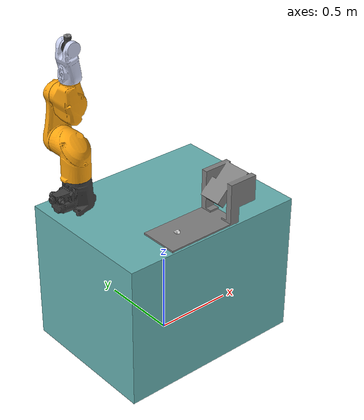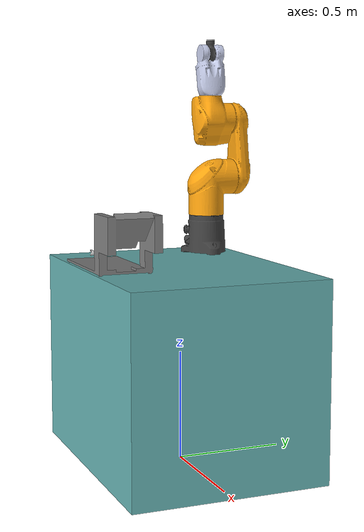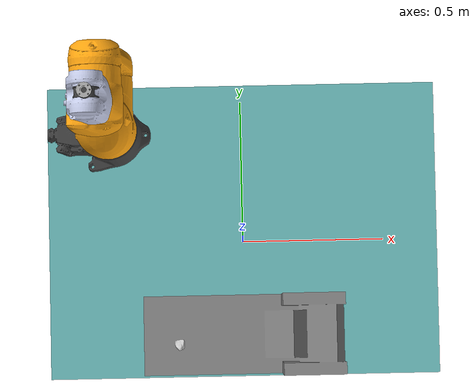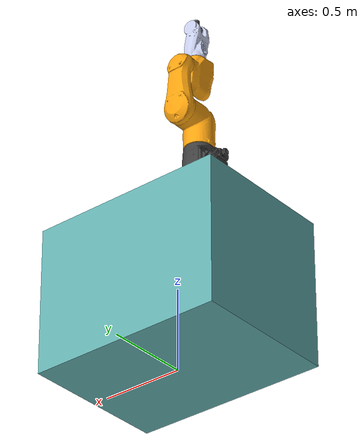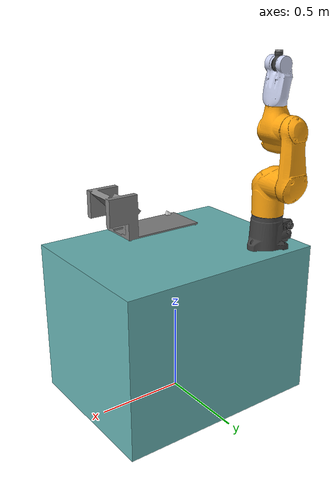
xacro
<?xml version="1.0" ?>
<robot name="room" xmlns:xacro="http://ros.org/wiki/xacro">

    <!-- ARGs -->
    <xacro:arg name="isShowCrown" default="true" />
    <xacro:arg name="isShowHDI" default="true" />

    <!-- PROPERTY -->
    <xacro:property name="robot1_prefix" value="robot1_"/>

    <!-- INCLUDES -->
    <xacro:include filename="$(find staubli_support)/urdf/robot/staubli_robot.xacro"/>
    <xacro:include filename="$(find staubli_support)/urdf/workcell/workcell.xacro"/>

    <!-- WORLD -->
    <link name="world" />

    <!-- ======== Components ========= -->

    <!-- ROBOT INIT -->
    <xacro:staubli_robot prefix="${robot1_prefix}"/>
    <xacro:workcell isShowCrown="$(arg isShowCrown)" isShowHDI="$(arg isShowHDI)"/>

    <!-- Connect Table -->
    <joint name="world_table_joint" type="fixed">
      <origin
        xyz="0 0 0.9"
        rpy="0 0 0" />
      <parent
        link="world" />
      <child
        link="table" />
    </joint>

    <!-- Connect Robot 1 -->
    <joint name="table_${robot1_prefix}base_link_joint" type="fixed">
      <origin
        xyz="-0.4 0.3 0"
        rpy="0 0 0" />
      <parent
        link="table" />
      <child
        link="${robot1_prefix}base_link" />
    </joint>

</robot>

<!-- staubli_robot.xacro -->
<robot name="staubli_support" xmlns:xacro="http://ros.org/wiki/xacro">

<xacro:macro name="default_material">
    <material name="">
      <color rgba="0.7 0.7 0.7 1.0"/>
    </material>
</xacro:macro>

<xacro:macro name="white_material">
    <material name="">
      <color rgba="1.0 1.0 1.0 1.0"/>
    </material>
</xacro:macro>

<xacro:macro name="box_inertial" params="m x y z rpy">
  <inertial>
    <origin xyz="0 ${y/2} 0" rpy="${rpy}" />
    <mass value="${m}"/>
    <inertia ixx="${1/12 * m * (y**2 + z**2)}" iyy="${1/12 * m * (x**2 + z**2)}" izz="${1/12 * m * (x**2 + y**2)}" ixy="0" ixz="0" iyz="0"/>
  </inertial>
</xacro:macro>

<xacro:macro name="staubli_robot" params="prefix">
  <link name="${prefix}base_link">
    <inertial>
      <origin
        xyz="-0.036094 -0.0011916 0.08178"
        rpy="0 0 0" />
      <mass
        value="7.5748" />
      <inertia
        ixx="0.029538"
        ixy="-8.9612E-05"
        ixz="0.00038729"
        iyy="0.027722"
        iyz="9.1466E-06"
        izz="0.022274" />
    </inertial>
    <visual>
      <origin
        xyz="0 0 0"
        rpy="0 0 0" />
      <geometry>
        <mesh
          filename="package://staubli_support/meshes/robot/base_link.STL" />
      </geometry>
      <material
        name="">
        <color
          rgba="0.25098 0.25098 0.25098 1" />
      </material>
    </visual>
    <collision>
      <origin
        xyz="0 0 0"
        rpy="0 0 0" />
      <geometry>
        <mesh
          filename="package://staubli_support/meshes/robot/base_link.STL" />
      </geometry>
    </collision>
  </link>
  <link name="${prefix}link1">
    <inertial>
      <origin
        xyz="-0.00023609 0.023183 0.32254"
        rpy="0 0 0" />
      <mass
        value="7.2296" />
      <inertia
        ixx="0.059563"
        ixy="-3.8764E-05"
        ixz="-0.00017842"
        iyy="0.050679"
        iyz="-0.010038"
        izz="0.03708" />
    </inertial>
    <visual>
      <origin
        xyz="0 0 0"
        rpy="0 0 0" />
      <geometry>
        <mesh
          filename="package://staubli_support/meshes/robot/link1.STL" />
      </geometry>
      <material
        name="">
        <color
          rgba="1 0.64706 0.058824 1" />
      </material>
    </visual>
    <collision>
      <origin
        xyz="0 0 0"
        rpy="0 0 0" />
      <geometry>
        <mesh
          filename="package://staubli_support/meshes/robot/link1.STL" />
      </geometry>
    </collision>
  </link>
  <joint name="${prefix}joint1" type="revolute">
    <origin
      xyz="0 0 0"
      rpy="0 0 0" />
    <parent
      link="${prefix}base_link" />
    <child
      link="${prefix}link1" />
    <axis
      xyz="0 0 1" />
    <limit
      lower="-3.141"
      upper="3.141"
      effort="1"
      velocity="1" />
  </joint>
  <link name="${prefix}link2">
    <inertial>
      <origin
        xyz="0.0017645 -0.12741 0.16923"
        rpy="0 0 0" />
      <mass
        value="4.1314" />
      <inertia
        ixx="0.063291"
        ixy="0.00024372"
        ixz="2.1522E-05"
        iyy="0.0084987"
        iyz="-0.0015532"
        izz="0.068276" />
    </inertial>
    <visual>
      <origin
        xyz="0 0 0"
        rpy="0 0 0" />
      <geometry>
        <mesh
          filename="package://staubli_support/meshes/robot/link2.STL" />
      </geometry>
      <material
        name="">
        <color
          rgba="1 0.64706 0.058824 1" />
      </material>
    </visual>
    <collision>
      <origin
        xyz="0 0 0"
        rpy="0 0 0" />
      <geometry>
        <mesh
          filename="package://staubli_support/meshes/robot/link2.STL" />
      </geometry>
    </collision>
  </link>
  <joint name="${prefix}joint2" type="revolute">
    <origin
      xyz="0 0 0.375"
      rpy="-1.5708 0 0" />
    <parent
      link="${prefix}link1" />
    <child
      link="${prefix}link2" />
    <axis
      xyz="0 0 1" />
    <limit
      lower="-2.225"
      upper="2.225"
      effort="1"
      velocity="1" />
  </joint>
  <link name="${prefix}link3">
    <inertial>
      <origin
        xyz="-0.0038838 0.0079486 0.019209"
        rpy="0 0 0" />
      <mass
        value="4.7835" />
      <inertia
        ixx="0.029621"
        ixy="0.00014958"
        ixz="-0.00068514"
        iyy="0.01953"
        iyz="-0.00061217"
        izz="0.022392" />
    </inertial>
    <visual>
      <origin
        xyz="0 0 0"
        rpy="0 0 0" />
      <geometry>
        <mesh
          filename="package://staubli_support/meshes/robot/link3.STL" />
      </geometry>
      <material
        name="">
        <color
          rgba="1 0.64706 0.058824 1" />
      </material>
    </visual>
    <collision>
      <origin
        xyz="0 0 0"
        rpy="0 0 0" />
      <geometry>
        <mesh
          filename="package://staubli_support/meshes/robot/link3.STL" />
      </geometry>
    </collision>
  </link>
  <joint name="${prefix}joint3" type="revolute">
    <origin
      xyz="0 -0.29 0.02"
      rpy="0 0 0" />
    <parent
      link="${prefix}link2" />
    <child
      link="${prefix}link3" />
    <axis
      xyz="0 0 1" />
    <limit
      lower="-2.487"
      upper="2.487"
      effort="1"
      velocity="1" />
  </joint>
  <link name="${prefix}link4">
    <inertial>
      <origin
        xyz="-0.0028815 6.4563E-07 0.21427"
        rpy="0 0 0" />
      <mass
        value="2.2867" />
      <inertia
        ixx="0.0056823"
        ixy="2.4543E-08"
        ixz="-0.00022643"
        iyy="0.004438"
        iyz="-7.2146E-07"
        izz="0.0043223" />
    </inertial>
    <visual>
      <origin
        xyz="0 0 0"
        rpy="0 0 0" />
      <geometry>
        <mesh
          filename="package://staubli_support/meshes/robot/link4.STL" />
      </geometry>
      <material
        name="">
        <color
          rgba="0.79216 0.81961 0.93333 1" />
      </material>
    </visual>
    <collision>
      <origin
        xyz="0 0 0"
        rpy="0 0 0" />
      <geometry>
        <mesh
          filename="package://staubli_support/meshes/robot/link4.STL" />
      </geometry>
    </collision>
  </link>
  <joint name="${prefix}joint4" type="revolute">
    <origin
      xyz="0 0 0"
      rpy="1.5708 0 0" />
    <parent
      link="${prefix}link3" />
    <child
      link="${prefix}link4" />
    <axis
      xyz="0 0 1" />
    <limit
      lower="-4.712"
      upper="4.712"
      effort="1"
      velocity="1" />
  </joint>
  <link name="${prefix}link5">
    <inertial>
      <origin
        xyz="0.00019051 -0.015249 8.859E-07"
        rpy="0 0 0" />
      <mass
        value="0.11472" />
      <inertia
        ixx="8.4067E-05"
        ixy="-3.5681E-07"
        ixz="2.7456E-11"
        iyy="2.9426E-05"
        iyz="4.0677E-09"
        izz="9.5322E-05" />
    </inertial>
    <visual>
      <origin
        xyz="0 0 0"
        rpy="0 0 0" />
      <geometry>
        <mesh
          filename="package://staubli_support/meshes/robot/link5.STL" />
      </geometry>
      <material
        name="">
        <color
          rgba="0.25098 0.25098 0.25098 1" />
      </material>
    </visual>
    <collision>
      <origin
        xyz="0 0 0"
        rpy="0 0 0" />
      <geometry>
        <mesh
          filename="package://staubli_support/meshes/robot/link5.STL" />
      </geometry>
    </collision>
  </link>
  <joint name="${prefix}joint5" type="revolute">
    <origin
      xyz="0 0 0.31"
      rpy="-1.5708 0 0" />
    <parent
      link="${prefix}link4" />
    <child
      link="${prefix}link5" />
    <axis
      xyz="0 0 1" />
    <limit
      lower="-2.138"
      upper="2.312"
      effort="1"
      velocity="1" />
  </joint>
  <link name="${prefix}link6">
    <inertial>
      <origin
        xyz="-0.00019715 3.4694E-18 -0.0066379"
        rpy="0 0 0" />
      <mass
        value="0.0088463" />
      <inertia
        ixx="1.0446E-06"
        ixy="-1.6907E-22"
        ixz="6.6235E-09"
        iyy="1.0168E-06"
        iyz="8.0812E-23"
        izz="1.5808E-06" />
    </inertial>
    <visual>
      <origin
        xyz="0 0 0"
        rpy="0 0 0" />
      <geometry>
        <mesh
          filename="package://staubli_support/meshes/robot/link6.STL" />
      </geometry>
      <material
        name="">
        <color
          rgba="0.66667 0.66667 0.66667 1" />
      </material>
    </visual>
    <collision>
      <origin
        xyz="0 0 0"
        rpy="0 0 0" />
      <geometry>
        <mesh
          filename="package://staubli_support/meshes/robot/link6.STL" />
      </geometry>
    </collision>
  </link>
  <joint name="${prefix}joint6" type="revolute">
    <origin
      xyz="0 -0.068037 0"
      rpy="1.5708 0 0" />
    <parent
      link="${prefix}link5" />
    <child
      link="${prefix}link6" />
    <axis
      xyz="0 0 -1" />
    <limit
      lower="-4.712"
      upper="4.712"
      effort="1"
      velocity="1" />
  </joint>
</xacro:macro>
</robot>

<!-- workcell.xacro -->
<robot name="workcell" xmlns:xacro="http://ros.org/wiki/xacro">

    <!-- Macros  -->
    <xacro:macro name="default_material">
        <material name="">
          <color rgba="0.7 0.7 0.7 1.0"/>
        </material>
    </xacro:macro>

    <xacro:macro name="white_material">
        <material name="">
          <color rgba="1.0 1.0 1.0 1.0"/>
        </material>
    </xacro:macro>

    <xacro:macro name="box_inertial" params="m x y z rpy">
      <inertial>
        <origin xyz="0 ${y/2} 0" rpy="${rpy}" />
        <mass value="${m}"/>
        <inertia ixx="${1/12 * m * (y**2 + z**2)}" iyy="${1/12 * m * (x**2 + z**2)}" izz="${1/12 * m * (x**2 + y**2)}" ixy="0" ixz="0" iyz="0"/>
      </inertial>
    </xacro:macro>

    <xacro:macro name="workcell" params="isShowCrown isShowHDI">

        <!-- TABLE -->
        <link name="table" >
            <xacro:box_inertial m="20" x="1" y="1.2" z="0.9" rpy="0 0 0"/>
            <visual>
              <origin
                  xyz="0 0 -0.45"
                  rpy="0 0 0" />
              <geometry>
                <box size="1.2 0.9 0.9" />
              </geometry>
              <material name="">
                <color rgba="0.4 0.7 0.7 1.0"/>
              </material>
            </visual>

            <collision>
              <origin xyz="0.0 0.0 0" rpy="0 0 0" />
              <geometry>
                <box size="1.2 0.9 0.9" />
              </geometry>
            </collision>
        </link>

        <xacro:if value="${isShowCrown}">
            <!-- Crown -->
            <link name="crown">
                <xacro:box_inertial m="0.2" x="0.03" y="0.03" z="0.02" rpy="0.0 0.0 0.0" />
                <visual>
                  <geometry>
                    <mesh filename="package://staubli_support/meshes/test_objects/crown.stl"  scale="0.003 0.003 0.003"/>
                  </geometry>
                  <material name="Light">
                    <color rgba="0.8 0.8 0.8 1"/>
                  </material>
                </visual>
                <collision>
                  <geometry>
                    <mesh filename="package://staubli_support/meshes/test_objects/crown.stl"  scale="0.003 0.003 0.003"/>
                  </geometry>
                  <origin rpy="0 0 0" xyz="0.0 0 0"/>
                </collision>
            </link>

            <!-- Connect crown -->
            <joint name="lmi_crown_joint" type="fixed">
            <origin
              xyz="0.5 0.035 0.1"
              rpy="0 0 0" />
            <parent
              link="lmi_scanner" />
            <child
              link="crown" />
            </joint>
        </xacro:if>

        <xacro:if value="${isShowHDI}">
            <!-- LMI -->
            <link name="lmi_scanner" >
                <xacro:box_inertial m="2" x="0.3" y="0.3" z="0.03" rpy="0.0 0.0 0.0" />
                <visual>
                  <origin xyz="0.0 -0.14 0.0" rpy="0.0 0.0 0.0"/>
                  <geometry>
                    <mesh filename="package://staubli_support/meshes/LMI_sensor/HDIScanner.STL" scale="0.0008 0.0008 0.0008"/>
                  </geometry>
                  <material name="LightGrey">
                    <color rgba="0.5 0.5 0.5 1.0"/>
                  </material>
                </visual>

                <collision>
                  <origin xyz="0.0 -0.14 0.0" rpy="0.0 0.0 0.0"/>
                  <geometry>
                    <mesh filename="package://staubli_support/meshes/LMI_sensor/HDIScanner.STL" scale="0.001 0.001 0.001" />
                  </geometry>
                </collision>
            </link>

            <!-- Connect LMI -->
            <joint name="table_lmi_scanner_joint" type="fixed">
              <origin
                xyz="0.3 -0.45 0.02"
                rpy="-1.57 3.14 0" />
              <parent
                link="table" />
              <child
                link="lmi_scanner" />
            </joint>

        </xacro:if>

    </xacro:macro>

</robot>
